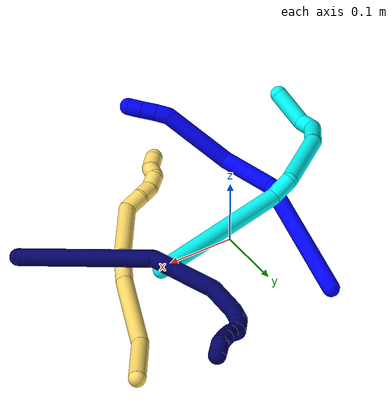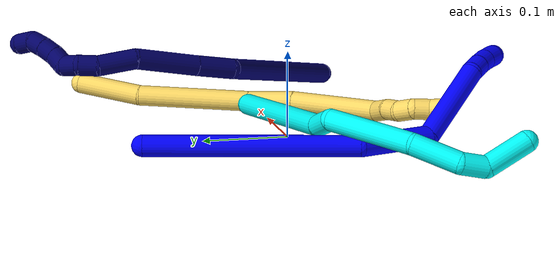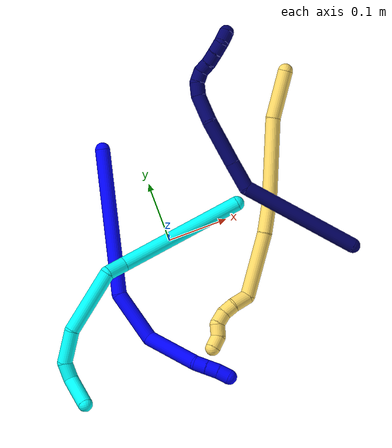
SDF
<sdf version="1.7">
 <world name="default">
  <model name="photoneo_s_sensor">
   <static>1</static>
   <pose>0 0 2 1.57079 1.57079 3.14159</pose>
   <link name="link">
    <inertial><mass>0.1</mass></inertial>
    <sensor name="sensor" type="depth">
     <update_rate>30</update_rate>
     <camera>
      <horizontal_fov>1.22</horizontal_fov>
      <image><width>1920</width><height>1200</height><format>B8G8R8</format></image>
      <clip><near>0.1</near><far>4</far></clip>
      <depth_camera><output>points</output></depth_camera>
     </camera>
     <plugin name="camera_plugin" filename="libgazebo_ros_depth_camera.so">
      <baseline>0.2</baseline>
      <alwaysOn>1</alwaysOn>
      <updateRate>0.0</updateRate>
      <cameraName>camera_ir</cameraName>
      <imageTopicName>/camera/color/image_raw</imageTopicName>
      <cameraInfoTopicName>/camera/color/camera_info</cameraInfoTopicName>
      <depthImageTopicName>/camera/depth/image_raw</depthImageTopicName>
      <depthImageCameraInfoTopicName>/camera/depth/camera_info</depthImageCameraInfoTopicName>
      <pointCloudTopicName>/camera/depth/points</pointCloudTopicName>
      <frameName>fr_optical</frameName>
      <pointCloudCutoff>0.1</pointCloudCutoff>
      <pointCloudCutoffMax>2.0</pointCloudCutoffMax>
      <distortionK1>0</distortionK1>
      <distortionK2>0</distortionK2>
      <distortionK3>0</distortionK3>
      <distortionT1>0</distortionT1>
      <distortionT2>0</distortionT2>
      <CxPrime>0</CxPrime>
      <Cx>0</Cx>
      <Cy>0</Cy>
      <focalLength>0</focalLength>
      <hackBaseline>0</hackBaseline>
     </plugin>
    </sensor>
   </link>
  </model>
  <model name="bin">
   <static>1</static>
   <link name="bottom">
    <collision name="collision-bottom">
     <pose>0 0 -0.01 0 -0 0</pose>
     <geometry><box><size>0.8 0.6 0.02</size></box></geometry>
     <surface>
      <friction><ode><mu>100</mu><mu2>100</mu2></ode></friction>
      <contact><collide_bitmask>65535</collide_bitmask></contact>
     </surface>
    </collision>
   </link>
   <link name="west_wall">
    <collision name="collision-west_wall">
     <pose>-0.41 0 0.1 0 -0 0</pose>
     <geometry><box><size>0.02 0.6 0.2</size></box></geometry>
     <surface>
      <friction><ode><mu>100</mu><mu2>100</mu2></ode></friction>
      <contact><collide_bitmask>65535</collide_bitmask></contact>
     </surface>
    </collision>
   </link>
   <link name="east_wall">
    <collision name="collision-east_wall">
     <pose>0.41 0 0.1 0 -0 0</pose>
     <geometry><box><size>0.02 0.6 0.2</size></box></geometry>
     <surface>
      <friction><ode><mu>100</mu><mu2>100</mu2></ode></friction>
      <contact><collide_bitmask>65535</collide_bitmask></contact>
     </surface>
    </collision>
   </link>
   <link name="south_wall">
    <collision name="collision-south_wall">
     <pose>0 -0.31 0.1 0 -0 0</pose>
     <geometry><box><size>0.8 0.02 0.2</size></box></geometry>
     <surface>
      <friction><ode><mu>100</mu><mu2>100</mu2></ode></friction>
      <contact><collide_bitmask>65535</collide_bitmask></contact>
     </surface>
    </collision>
   </link>
   <link name="north_wall">
    <collision name="collision-north_wall">
     <pose>0 0.31 0.1 0 -0 0</pose>
     <geometry><box><size>0.8 0.02 0.2</size></box></geometry>
     <surface>
      <friction><ode><mu>100</mu><mu2>100</mu2></ode></friction>
      <contact><collide_bitmask>65535</collide_bitmask></contact>
     </surface>
    </collision>
   </link>
  </model>
  <model name="1">
   <static>0</static>
   <link name="1">
    <collision name="collision-cylinder-e_1_1_4">
     <pose>-0.010804 -0.106059 0.059136 1.06215 -0.088735 -0.052142</pose>
     <geometry><cylinder><radius>0.0125</radius><length>0.243822</length></cylinder></geometry>
     <surface>
      <friction><ode><mu>1.16</mu><mu2>1.16</mu2><slip1>0</slip1><slip2>0</slip2></ode></friction>
      <contact><ode><kp>1e+06</kp><kd>1</kd><max_vel>0</max_vel><min_depth>0.001</min_depth></ode></contact>
     </surface>
    </collision>
    <visual name="visual-cylinder-e_1_1_4">
     <pose>-0.010804 -0.106059 0.059136 1.06215 -0.088735 -0.052142</pose>
     <geometry><cylinder><radius>0.0125</radius><length>0.243822</length></cylinder></geometry>
     <material><ambient>0 0 1 1</ambient></material>
    </visual>
    <collision name="collision-cylinder-e_2_4_5">
     <pose>-0.009007 -0.240824 0.149514 0.743119 0.288675 0.113151</pose>
     <geometry><cylinder><radius>0.0125</radius><length>0.088518</length></cylinder></geometry>
     <surface>
      <friction><ode><mu>1.16</mu><mu2>1.16</mu2><slip1>0</slip1><slip2>0</slip2></ode></friction>
      <contact><ode><kp>1e+06</kp><kd>1</kd><max_vel>0</max_vel><min_depth>0.001</min_depth></ode></contact>
     </surface>
    </collision>
    <visual name="visual-cylinder-e_2_4_5">
     <pose>-0.009007 -0.240824 0.149514 0.743119 0.288675 0.113151</pose>
     <geometry><cylinder><radius>0.0125</radius><length>0.088518</length></cylinder></geometry>
     <material><ambient>0 0 1 1</ambient></material>
    </visual>
    <collision name="collision-cylinder-e_3_5_6">
     <pose>0.010606 -0.271583 0.233745 0.038718 0.1315 0.00255</pose>
     <geometry><cylinder><radius>0.0125</radius><length>0.106981</length></cylinder></geometry>
     <surface>
      <friction><ode><mu>1.16</mu><mu2>1.16</mu2><slip1>0</slip1><slip2>0</slip2></ode></friction>
      <contact><ode><kp>1e+06</kp><kd>1</kd><max_vel>0</max_vel><min_depth>0.001</min_depth></ode></contact>
     </surface>
    </collision>
    <visual name="visual-cylinder-e_3_5_6">
     <pose>0.010606 -0.271583 0.233745 0.038718 0.1315 0.00255</pose>
     <geometry><cylinder><radius>0.0125</radius><length>0.106981</length></cylinder></geometry>
     <material><ambient>0 0 1 1</ambient></material>
    </visual>
    <collision name="collision-cylinder-e_4_6_7">
     <pose>0.022781 -0.274605 0.295456 0.110668 0.531647 0.03016</pose>
     <geometry><cylinder><radius>0.0125</radius><length>0.020363</length></cylinder></geometry>
     <surface>
      <friction><ode><mu>1.16</mu><mu2>1.16</mu2><slip1>0</slip1><slip2>0</slip2></ode></friction>
      <contact><ode><kp>1e+06</kp><kd>1</kd><max_vel>0</max_vel><min_depth>0.001</min_depth></ode></contact>
     </surface>
    </collision>
    <visual name="visual-cylinder-e_4_6_7">
     <pose>0.022781 -0.274605 0.295456 0.110668 0.531647 0.03016</pose>
     <geometry><cylinder><radius>0.0125</radius><length>0.020363</length></cylinder></geometry>
     <material><ambient>0 0 1 1</ambient></material>
    </visual>
    <collision name="collision-cylinder-e_5_7_8">
     <pose>0.033707 -0.276838 0.312404 0.15247 0.60582 0.047735</pose>
     <geometry><cylinder><radius>0.0125</radius><length>0.020247</length></cylinder></geometry>
     <surface>
      <friction><ode><mu>1.16</mu><mu2>1.16</mu2><slip1>0</slip1><slip2>0</slip2></ode></friction>
      <contact><ode><kp>1e+06</kp><kd>1</kd><max_vel>0</max_vel><min_depth>0.001</min_depth></ode></contact>
     </surface>
    </collision>
    <visual name="visual-cylinder-e_5_7_8">
     <pose>0.033707 -0.276838 0.312404 0.15247 0.60582 0.047735</pose>
     <geometry><cylinder><radius>0.0125</radius><length>0.020247</length></cylinder></geometry>
     <material><ambient>0 0 1 1</ambient></material>
    </visual>
    <collision name="collision-cylinder-e_6_8_2">
     <pose>0.044937 -0.280638 0.328654 0.306028 0.575875 0.091286</pose>
     <geometry><cylinder><radius>0.0125</radius><length>0.02007</length></cylinder></geometry>
     <surface>
      <friction><ode><mu>1.16</mu><mu2>1.16</mu2><slip1>0</slip1><slip2>0</slip2></ode></friction>
      <contact><ode><kp>1e+06</kp><kd>1</kd><max_vel>0</max_vel><min_depth>0.001</min_depth></ode></contact>
     </surface>
    </collision>
    <visual name="visual-cylinder-e_6_8_2">
     <pose>0.044937 -0.280638 0.328654 0.306028 0.575875 0.091286</pose>
     <geometry><cylinder><radius>0.0125</radius><length>0.02007</length></cylinder></geometry>
     <material><ambient>0 0 1 1</ambient></material>
    </visual>
    <collision name="collision-sphere-2">
     <pose>0.050401 -0.283173 0.33668 0 -0 0</pose>
     <geometry><sphere><radius>0.0125</radius></sphere></geometry>
     <surface>
      <friction><ode><mu>1.16</mu><mu2>1.16</mu2><slip1>0</slip1><slip2>0</slip2></ode></friction>
      <contact><ode><kp>1e+06</kp><kd>1</kd><max_vel>0</max_vel><min_depth>0.001</min_depth></ode></contact>
     </surface>
    </collision>
    <visual name="visual-sphere-2">
     <pose>0.050401 -0.283173 0.33668 0 -0 0</pose>
     <geometry><sphere><radius>0.0125</radius></sphere></geometry>
     <material><ambient>0 0 1 1</ambient></material>
    </visual>
    <collision name="collision-sphere-4">
     <pose>-0.021607 -0.212118 0.118272 0 -0 0</pose>
     <geometry><sphere><radius>0.0125</radius></sphere></geometry>
     <surface>
      <friction><ode><mu>1.16</mu><mu2>1.16</mu2><slip1>0</slip1><slip2>0</slip2></ode></friction>
      <contact><ode><kp>1e+06</kp><kd>1</kd><max_vel>0</max_vel><min_depth>0.001</min_depth></ode></contact>
     </surface>
    </collision>
    <visual name="visual-sphere-4">
     <pose>-0.021607 -0.212118 0.118272 0 -0 0</pose>
     <geometry><sphere><radius>0.0125</radius></sphere></geometry>
     <material><ambient>0 0 1 1</ambient></material>
    </visual>
    <collision name="collision-sphere-1">
     <geometry><sphere><radius>0.0125</radius></sphere></geometry>
     <surface>
      <friction><ode><mu>1.16</mu><mu2>1.16</mu2><slip1>0</slip1><slip2>0</slip2></ode></friction>
      <contact><ode><kp>1e+06</kp><kd>1</kd><max_vel>0</max_vel><min_depth>0.001</min_depth></ode></contact>
     </surface>
    </collision>
    <visual name="visual-sphere-1">
     <geometry><sphere><radius>0.0125</radius></sphere></geometry>
     <material><ambient>0 0 1 1</ambient></material>
    </visual>
    <collision name="collision-sphere-8">
     <pose>0.039472 -0.278102 0.320629 0 -0 0</pose>
     <geometry><sphere><radius>0.0125</radius></sphere></geometry>
     <surface>
      <friction><ode><mu>1.16</mu><mu2>1.16</mu2><slip1>0</slip1><slip2>0</slip2></ode></friction>
      <contact><ode><kp>1e+06</kp><kd>1</kd><max_vel>0</max_vel><min_depth>0.001</min_depth></ode></contact>
     </surface>
    </collision>
    <visual name="visual-sphere-8">
     <pose>0.039472 -0.278102 0.320629 0 -0 0</pose>
     <geometry><sphere><radius>0.0125</radius></sphere></geometry>
     <material><ambient>0 0 1 1</ambient></material>
    </visual>
    <collision name="collision-sphere-5">
     <pose>0.003592 -0.269531 0.180757 0 -0 0</pose>
     <geometry><sphere><radius>0.0125</radius></sphere></geometry>
     <surface>
      <friction><ode><mu>1.16</mu><mu2>1.16</mu2><slip1>0</slip1><slip2>0</slip2></ode></friction>
      <contact><ode><kp>1e+06</kp><kd>1</kd><max_vel>0</max_vel><min_depth>0.001</min_depth></ode></contact>
     </surface>
    </collision>
    <visual name="visual-sphere-5">
     <pose>0.003592 -0.269531 0.180757 0 -0 0</pose>
     <geometry><sphere><radius>0.0125</radius></sphere></geometry>
     <material><ambient>0 0 1 1</ambient></material>
    </visual>
    <collision name="collision-sphere-6">
     <pose>0.01762 -0.273636 0.286734 0 -0 0</pose>
     <geometry><sphere><radius>0.0125</radius></sphere></geometry>
     <surface>
      <friction><ode><mu>1.16</mu><mu2>1.16</mu2><slip1>0</slip1><slip2>0</slip2></ode></friction>
      <contact><ode><kp>1e+06</kp><kd>1</kd><max_vel>0</max_vel><min_depth>0.001</min_depth></ode></contact>
     </surface>
    </collision>
    <visual name="visual-sphere-6">
     <pose>0.01762 -0.273636 0.286734 0 -0 0</pose>
     <geometry><sphere><radius>0.0125</radius></sphere></geometry>
     <material><ambient>0 0 1 1</ambient></material>
    </visual>
    <collision name="collision-sphere-7">
     <pose>0.027943 -0.275574 0.304179 0 -0 0</pose>
     <geometry><sphere><radius>0.0125</radius></sphere></geometry>
     <surface>
      <friction><ode><mu>1.16</mu><mu2>1.16</mu2><slip1>0</slip1><slip2>0</slip2></ode></friction>
      <contact><ode><kp>1e+06</kp><kd>1</kd><max_vel>0</max_vel><min_depth>0.001</min_depth></ode></contact>
     </surface>
    </collision>
    <visual name="visual-sphere-7">
     <pose>0.027943 -0.275574 0.304179 0 -0 0</pose>
     <geometry><sphere><radius>0.0125</radius></sphere></geometry>
     <material><ambient>0 0 1 1</ambient></material>
    </visual>
    <inertial>
     <pose>-0.000497 -0.18612 0.143194 0 -0 0</pose>
     <mass>0.5</mass>
     <inertia>
      <ixx>0.001326</ixx>
      <ixy>0</ixy>
      <ixz>0</ixz>
      <iyy>0.000675</iyy>
      <iyz>0</iyz>
      <izz>0.001204</izz>
     </inertia>
    </inertial>
   </link>
   <pose>-0.052392 0.179454 0.011462 0.576975 0.656206 -0.124344</pose>
  </model>
  <model name="3">
   <static>0</static>
   <link name="3">
    <collision name="collision-cylinder-e_1_1_4">
     <pose>-0.056237 -0.037152 0.083203 0.419963 -0.552947 -0.120796</pose>
     <geometry><cylinder><radius>0.0125</radius><length>0.214155</length></cylinder></geometry>
     <surface>
      <friction><ode><mu>1.16</mu><mu2>1.16</mu2><slip1>0</slip1><slip2>0</slip2></ode></friction>
      <contact><ode><kp>1e+06</kp><kd>1</kd><max_vel>0</max_vel><min_depth>0.001</min_depth></ode></contact>
     </surface>
    </collision>
    <visual name="visual-cylinder-e_1_1_4">
     <pose>-0.056237 -0.037152 0.083203 0.419963 -0.552947 -0.120796</pose>
     <geometry><cylinder><radius>0.0125</radius><length>0.214155</length></cylinder></geometry>
     <material><ambient>0.003922 1 0.996078 1</ambient></material>
    </visual>
    <collision name="collision-cylinder-e_2_4_5">
     <pose>-0.123277 -0.083573 0.176278 0.75385 -0.673382 -0.275357</pose>
     <geometry><cylinder><radius>0.0125</radius><length>0.034646</length></cylinder></geometry>
     <surface>
      <friction><ode><mu>1.16</mu><mu2>1.16</mu2><slip1>0</slip1><slip2>0</slip2></ode></friction>
      <contact><ode><kp>1e+06</kp><kd>1</kd><max_vel>0</max_vel><min_depth>0.001</min_depth></ode></contact>
     </surface>
    </collision>
    <visual name="visual-cylinder-e_2_4_5">
     <pose>-0.123277 -0.083573 0.176278 0.75385 -0.673382 -0.275357</pose>
     <geometry><cylinder><radius>0.0125</radius><length>0.034646</length></cylinder></geometry>
     <material><ambient>0.003922 1 0.996078 1</ambient></material>
    </visual>
    <collision name="collision-cylinder-e_3_5_6">
     <pose>-0.176732 -0.086949 0.221127 -0.166906 -0.877089 0.078421</pose>
     <geometry><cylinder><radius>0.0125</radius><length>0.110948</length></cylinder></geometry>
     <surface>
      <friction><ode><mu>1.16</mu><mu2>1.16</mu2><slip1>0</slip1><slip2>0</slip2></ode></friction>
      <contact><ode><kp>1e+06</kp><kd>1</kd><max_vel>0</max_vel><min_depth>0.001</min_depth></ode></contact>
     </surface>
    </collision>
    <visual name="visual-cylinder-e_3_5_6">
     <pose>-0.176732 -0.086949 0.221127 -0.166906 -0.877089 0.078421</pose>
     <geometry><cylinder><radius>0.0125</radius><length>0.110948</length></cylinder></geometry>
     <material><ambient>0.003922 1 0.996078 1</ambient></material>
    </visual>
    <collision name="collision-cylinder-e_4_6_7">
     <pose>-0.240422 -0.068561 0.269574 -0.747864 -0.852887 0.35284</pose>
     <geometry><cylinder><radius>0.0125</radius><length>0.055862</length></cylinder></geometry>
     <surface>
      <friction><ode><mu>1.16</mu><mu2>1.16</mu2><slip1>0</slip1><slip2>0</slip2></ode></friction>
      <contact><ode><kp>1e+06</kp><kd>1</kd><max_vel>0</max_vel><min_depth>0.001</min_depth></ode></contact>
     </surface>
    </collision>
    <visual name="visual-cylinder-e_4_6_7">
     <pose>-0.240422 -0.068561 0.269574 -0.747864 -0.852887 0.35284</pose>
     <geometry><cylinder><radius>0.0125</radius><length>0.055862</length></cylinder></geometry>
     <material><ambient>0.003922 1 0.996078 1</ambient></material>
    </visual>
    <collision name="collision-cylinder-e_5_7_8">
     <pose>-0.272516 -0.046208 0.282237 -1.65256 -0.840951 0.903614</pose>
     <geometry><cylinder><radius>0.0125</radius><length>0.029669</length></cylinder></geometry>
     <surface>
      <friction><ode><mu>1.16</mu><mu2>1.16</mu2><slip1>0</slip1><slip2>0</slip2></ode></friction>
      <contact><ode><kp>1e+06</kp><kd>1</kd><max_vel>0</max_vel><min_depth>0.001</min_depth></ode></contact>
     </surface>
    </collision>
    <visual name="visual-cylinder-e_5_7_8">
     <pose>-0.272516 -0.046208 0.282237 -1.65256 -0.840951 0.903614</pose>
     <geometry><cylinder><radius>0.0125</radius><length>0.029669</length></cylinder></geometry>
     <material><ambient>0.003922 1 0.996078 1</ambient></material>
    </visual>
    <collision name="collision-cylinder-e_6_8_2">
     <pose>-0.30722 -0.031866 0.268421 -2.80966 -1.04386 2.57477</pose>
     <geometry><cylinder><radius>0.0125</radius><length>0.05472</length></cylinder></geometry>
     <surface>
      <friction><ode><mu>1.16</mu><mu2>1.16</mu2><slip1>0</slip1><slip2>0</slip2></ode></friction>
      <contact><ode><kp>1e+06</kp><kd>1</kd><max_vel>0</max_vel><min_depth>0.001</min_depth></ode></contact>
     </surface>
    </collision>
    <visual name="visual-cylinder-e_6_8_2">
     <pose>-0.30722 -0.031866 0.268421 -2.80966 -1.04386 2.57477</pose>
     <geometry><cylinder><radius>0.0125</radius><length>0.05472</length></cylinder></geometry>
     <material><ambient>0.003922 1 0.996078 1</ambient></material>
    </visual>
    <collision name="collision-sphere-2">
     <pose>-0.330869 -0.027383 0.255413 0 -0 0</pose>
     <geometry><sphere><radius>0.0125</radius></sphere></geometry>
     <surface>
      <friction><ode><mu>1.16</mu><mu2>1.16</mu2><slip1>0</slip1><slip2>0</slip2></ode></friction>
      <contact><ode><kp>1e+06</kp><kd>1</kd><max_vel>0</max_vel><min_depth>0.001</min_depth></ode></contact>
     </surface>
    </collision>
    <visual name="visual-sphere-2">
     <pose>-0.330869 -0.027383 0.255413 0 -0 0</pose>
     <geometry><sphere><radius>0.0125</radius></sphere></geometry>
     <material><ambient>0.003922 1 0.996078 1</ambient></material>
    </visual>
    <collision name="collision-sphere-4">
     <pose>-0.112474 -0.074305 0.166406 0 -0 0</pose>
     <geometry><sphere><radius>0.0125</radius></sphere></geometry>
     <surface>
      <friction><ode><mu>1.16</mu><mu2>1.16</mu2><slip1>0</slip1><slip2>0</slip2></ode></friction>
      <contact><ode><kp>1e+06</kp><kd>1</kd><max_vel>0</max_vel><min_depth>0.001</min_depth></ode></contact>
     </surface>
    </collision>
    <visual name="visual-sphere-4">
     <pose>-0.112474 -0.074305 0.166406 0 -0 0</pose>
     <geometry><sphere><radius>0.0125</radius></sphere></geometry>
     <material><ambient>0.003922 1 0.996078 1</ambient></material>
    </visual>
    <collision name="collision-sphere-1">
     <geometry><sphere><radius>0.0125</radius></sphere></geometry>
     <surface>
      <friction><ode><mu>1.16</mu><mu2>1.16</mu2><slip1>0</slip1><slip2>0</slip2></ode></friction>
      <contact><ode><kp>1e+06</kp><kd>1</kd><max_vel>0</max_vel><min_depth>0.001</min_depth></ode></contact>
     </surface>
    </collision>
    <visual name="visual-sphere-1">
     <geometry><sphere><radius>0.0125</radius></sphere></geometry>
     <material><ambient>0.003922 1 0.996078 1</ambient></material>
    </visual>
    <collision name="collision-sphere-8">
     <pose>-0.283571 -0.03635 0.281429 0 -0 0</pose>
     <geometry><sphere><radius>0.0125</radius></sphere></geometry>
     <surface>
      <friction><ode><mu>1.16</mu><mu2>1.16</mu2><slip1>0</slip1><slip2>0</slip2></ode></friction>
      <contact><ode><kp>1e+06</kp><kd>1</kd><max_vel>0</max_vel><min_depth>0.001</min_depth></ode></contact>
     </surface>
    </collision>
    <visual name="visual-sphere-8">
     <pose>-0.283571 -0.03635 0.281429 0 -0 0</pose>
     <geometry><sphere><radius>0.0125</radius></sphere></geometry>
     <material><ambient>0.003922 1 0.996078 1</ambient></material>
    </visual>
    <collision name="collision-sphere-5">
     <pose>-0.13408 -0.092842 0.186151 0 -0 0</pose>
     <geometry><sphere><radius>0.0125</radius></sphere></geometry>
     <surface>
      <friction><ode><mu>1.16</mu><mu2>1.16</mu2><slip1>0</slip1><slip2>0</slip2></ode></friction>
      <contact><ode><kp>1e+06</kp><kd>1</kd><max_vel>0</max_vel><min_depth>0.001</min_depth></ode></contact>
     </surface>
    </collision>
    <visual name="visual-sphere-5">
     <pose>-0.13408 -0.092842 0.186151 0 -0 0</pose>
     <geometry><sphere><radius>0.0125</radius></sphere></geometry>
     <material><ambient>0.003922 1 0.996078 1</ambient></material>
    </visual>
    <collision name="collision-sphere-6">
     <pose>-0.219385 -0.081057 0.256104 0 -0 0</pose>
     <geometry><sphere><radius>0.0125</radius></sphere></geometry>
     <surface>
      <friction><ode><mu>1.16</mu><mu2>1.16</mu2><slip1>0</slip1><slip2>0</slip2></ode></friction>
      <contact><ode><kp>1e+06</kp><kd>1</kd><max_vel>0</max_vel><min_depth>0.001</min_depth></ode></contact>
     </surface>
    </collision>
    <visual name="visual-sphere-6">
     <pose>-0.219385 -0.081057 0.256104 0 -0 0</pose>
     <geometry><sphere><radius>0.0125</radius></sphere></geometry>
     <material><ambient>0.003922 1 0.996078 1</ambient></material>
    </visual>
    <collision name="collision-sphere-7">
     <pose>-0.26146 -0.056066 0.283045 0 -0 0</pose>
     <geometry><sphere><radius>0.0125</radius></sphere></geometry>
     <surface>
      <friction><ode><mu>1.16</mu><mu2>1.16</mu2><slip1>0</slip1><slip2>0</slip2></ode></friction>
      <contact><ode><kp>1e+06</kp><kd>1</kd><max_vel>0</max_vel><min_depth>0.001</min_depth></ode></contact>
     </surface>
    </collision>
    <visual name="visual-sphere-7">
     <pose>-0.26146 -0.056066 0.283045 0 -0 0</pose>
     <geometry><sphere><radius>0.0125</radius></sphere></geometry>
     <material><ambient>0.003922 1 0.996078 1</ambient></material>
    </visual>
    <inertial>
     <pose>-0.148499 -0.054887 0.17316 0 -0 0</pose>
     <mass>0.5</mass>
     <inertia>
      <ixx>0.000686</ixx>
      <ixy>0</ixy>
      <ixz>0</ixz>
      <iyy>0.000851</iyy>
      <iyz>0</iyz>
      <izz>0.000841</izz>
     </inertia>
    </inertial>
   </link>
   <pose>0.126271 0.017504 0.011819 -2.13149 0.396029 1.16094</pose>
  </model>
  <model name="5">
   <static>0</static>
   <link name="5">
    <collision name="collision-cylinder-e_1_1_4">
     <pose>-0.024747 -0.022208 -0.023945 2.3938 -0.648447 -1.41661</pose>
     <geometry><cylinder><radius>0.0125</radius><length>0.081951</length></cylinder></geometry>
     <surface>
      <friction><ode><mu>1.16</mu><mu2>1.16</mu2><slip1>0</slip1><slip2>0</slip2></ode></friction>
      <contact><ode><kp>1e+06</kp><kd>1</kd><max_vel>0</max_vel><min_depth>0.001</min_depth></ode></contact>
     </surface>
    </collision>
    <visual name="visual-cylinder-e_1_1_4">
     <pose>-0.024747 -0.022208 -0.023945 2.3938 -0.648447 -1.41661</pose>
     <geometry><cylinder><radius>0.0125</radius><length>0.081951</length></cylinder></geometry>
     <material><ambient>1 0.858824 0.4 1</ambient></material>
    </visual>
    <collision name="collision-cylinder-e_2_4_5">
     <pose>-0.07922 -0.092368 -0.087206 2.25757 -0.447016 -0.895554</pose>
     <geometry><cylinder><radius>0.0125</radius><length>0.137531</length></cylinder></geometry>
     <surface>
      <friction><ode><mu>1.16</mu><mu2>1.16</mu2><slip1>0</slip1><slip2>0</slip2></ode></friction>
      <contact><ode><kp>1e+06</kp><kd>1</kd><max_vel>0</max_vel><min_depth>0.001</min_depth></ode></contact>
     </surface>
    </collision>
    <visual name="visual-cylinder-e_2_4_5">
     <pose>-0.07922 -0.092368 -0.087206 2.25757 -0.447016 -0.895554</pose>
     <geometry><cylinder><radius>0.0125</radius><length>0.137531</length></cylinder></geometry>
     <material><ambient>1 0.858824 0.4 1</ambient></material>
    </visual>
    <collision name="collision-cylinder-e_3_5_6">
     <pose>-0.123955 -0.160152 -0.140286 2.17746 -0.556258 -0.999065</pose>
     <geometry><cylinder><radius>0.0125</radius><length>0.056852</length></cylinder></geometry>
     <surface>
      <friction><ode><mu>1.16</mu><mu2>1.16</mu2><slip1>0</slip1><slip2>0</slip2></ode></friction>
      <contact><ode><kp>1e+06</kp><kd>1</kd><max_vel>0</max_vel><min_depth>0.001</min_depth></ode></contact>
     </surface>
    </collision>
    <visual name="visual-cylinder-e_3_5_6">
     <pose>-0.123955 -0.160152 -0.140286 2.17746 -0.556258 -0.999065</pose>
     <geometry><cylinder><radius>0.0125</radius><length>0.056852</length></cylinder></geometry>
     <material><ambient>1 0.858824 0.4 1</ambient></material>
    </visual>
    <collision name="collision-cylinder-e_4_6_7">
     <pose>-0.172571 -0.212165 -0.182157 2.28874 -0.666477 -1.30219</pose>
     <geometry><cylinder><radius>0.0125</radius><length>0.108721</length></cylinder></geometry>
     <surface>
      <friction><ode><mu>1.16</mu><mu2>1.16</mu2><slip1>0</slip1><slip2>0</slip2></ode></friction>
      <contact><ode><kp>1e+06</kp><kd>1</kd><max_vel>0</max_vel><min_depth>0.001</min_depth></ode></contact>
     </surface>
    </collision>
    <visual name="visual-cylinder-e_4_6_7">
     <pose>-0.172571 -0.212165 -0.182157 2.28874 -0.666477 -1.30219</pose>
     <geometry><cylinder><radius>0.0125</radius><length>0.108721</length></cylinder></geometry>
     <material><ambient>1 0.858824 0.4 1</ambient></material>
    </visual>
    <collision name="collision-cylinder-e_5_7_8">
     <pose>-0.220251 -0.248165 -0.209112 1.27783 -1.29459 -1.02335</pose>
     <geometry><cylinder><radius>0.0125</radius><length>0.029256</length></cylinder></geometry>
     <surface>
      <friction><ode><mu>1.16</mu><mu2>1.16</mu2><slip1>0</slip1><slip2>0</slip2></ode></friction>
      <contact><ode><kp>1e+06</kp><kd>1</kd><max_vel>0</max_vel><min_depth>0.001</min_depth></ode></contact>
     </surface>
    </collision>
    <visual name="visual-cylinder-e_5_7_8">
     <pose>-0.220251 -0.248165 -0.209112 1.27783 -1.29459 -1.02335</pose>
     <geometry><cylinder><radius>0.0125</radius><length>0.029256</length></cylinder></geometry>
     <material><ambient>1 0.858824 0.4 1</ambient></material>
    </visual>
    <collision name="collision-cylinder-e_6_8_9">
     <pose>-0.244374 -0.254778 -0.20952 2.07993 -1.26254 -1.78848</pose>
     <geometry><cylinder><radius>0.0125</radius><length>0.021093</length></cylinder></geometry>
     <surface>
      <friction><ode><mu>1.16</mu><mu2>1.16</mu2><slip1>0</slip1><slip2>0</slip2></ode></friction>
      <contact><ode><kp>1e+06</kp><kd>1</kd><max_vel>0</max_vel><min_depth>0.001</min_depth></ode></contact>
     </surface>
    </collision>
    <visual name="visual-cylinder-e_6_8_9">
     <pose>-0.244374 -0.254778 -0.20952 2.07993 -1.26254 -1.78848</pose>
     <geometry><cylinder><radius>0.0125</radius><length>0.021093</length></cylinder></geometry>
     <material><ambient>1 0.858824 0.4 1</ambient></material>
    </visual>
    <collision name="collision-cylinder-e_7_9_10">
     <pose>-0.263174 -0.26406 -0.213005 1.85937 -0.912512 -1.16348</pose>
     <geometry><cylinder><radius>0.0125</radius><length>0.022124</length></cylinder></geometry>
     <surface>
      <friction><ode><mu>1.16</mu><mu2>1.16</mu2><slip1>0</slip1><slip2>0</slip2></ode></friction>
      <contact><ode><kp>1e+06</kp><kd>1</kd><max_vel>0</max_vel><min_depth>0.001</min_depth></ode></contact>
     </surface>
    </collision>
    <visual name="visual-cylinder-e_7_9_10">
     <pose>-0.263174 -0.26406 -0.213005 1.85937 -0.912512 -1.16348</pose>
     <geometry><cylinder><radius>0.0125</radius><length>0.022124</length></cylinder></geometry>
     <material><ambient>1 0.858824 0.4 1</ambient></material>
    </visual>
    <collision name="collision-cylinder-e_8_10_11">
     <pose>-0.275133 -0.278158 -0.221184 2.25854 -0.314871 -0.648067</pose>
     <geometry><cylinder><radius>0.0125</radius><length>0.020719</length></cylinder></geometry>
     <surface>
      <friction><ode><mu>1.16</mu><mu2>1.16</mu2><slip1>0</slip1><slip2>0</slip2></ode></friction>
      <contact><ode><kp>1e+06</kp><kd>1</kd><max_vel>0</max_vel><min_depth>0.001</min_depth></ode></contact>
     </surface>
    </collision>
    <visual name="visual-cylinder-e_8_10_11">
     <pose>-0.275133 -0.278158 -0.221184 2.25854 -0.314871 -0.648067</pose>
     <geometry><cylinder><radius>0.0125</radius><length>0.020719</length></cylinder></geometry>
     <material><ambient>1 0.858824 0.4 1</ambient></material>
    </visual>
    <collision name="collision-cylinder-e_9_11_2">
     <pose>-0.286482 -0.292276 -0.23055 2.01711 -0.845746 -1.24043</pose>
     <geometry><cylinder><radius>0.0125</radius><length>0.021753</length></cylinder></geometry>
     <surface>
      <friction><ode><mu>1.16</mu><mu2>1.16</mu2><slip1>0</slip1><slip2>0</slip2></ode></friction>
      <contact><ode><kp>1e+06</kp><kd>1</kd><max_vel>0</max_vel><min_depth>0.001</min_depth></ode></contact>
     </surface>
    </collision>
    <visual name="visual-cylinder-e_9_11_2">
     <pose>-0.286482 -0.292276 -0.23055 2.01711 -0.845746 -1.24043</pose>
     <geometry><cylinder><radius>0.0125</radius><length>0.021753</length></cylinder></geometry>
     <material><ambient>1 0.858824 0.4 1</ambient></material>
    </visual>
    <collision name="collision-sphere-2">
     <pose>-0.294623 -0.298782 -0.233664 0 -0 0</pose>
     <geometry><sphere><radius>0.0125</radius></sphere></geometry>
     <surface>
      <friction><ode><mu>1.16</mu><mu2>1.16</mu2><slip1>0</slip1><slip2>0</slip2></ode></friction>
      <contact><ode><kp>1e+06</kp><kd>1</kd><max_vel>0</max_vel><min_depth>0.001</min_depth></ode></contact>
     </surface>
    </collision>
    <visual name="visual-sphere-2">
     <pose>-0.294623 -0.298782 -0.233664 0 -0 0</pose>
     <geometry><sphere><radius>0.0125</radius></sphere></geometry>
     <material><ambient>1 0.858824 0.4 1</ambient></material>
    </visual>
    <collision name="collision-sphere-11">
     <pose>-0.278341 -0.285769 -0.227437 0 -0 0</pose>
     <geometry><sphere><radius>0.0125</radius></sphere></geometry>
     <surface>
      <friction><ode><mu>1.16</mu><mu2>1.16</mu2><slip1>0</slip1><slip2>0</slip2></ode></friction>
      <contact><ode><kp>1e+06</kp><kd>1</kd><max_vel>0</max_vel><min_depth>0.001</min_depth></ode></contact>
     </surface>
    </collision>
    <visual name="visual-sphere-11">
     <pose>-0.278341 -0.285769 -0.227437 0 -0 0</pose>
     <geometry><sphere><radius>0.0125</radius></sphere></geometry>
     <material><ambient>1 0.858824 0.4 1</ambient></material>
    </visual>
    <collision name="collision-sphere-10">
     <pose>-0.271925 -0.270547 -0.214931 0 -0 0</pose>
     <geometry><sphere><radius>0.0125</radius></sphere></geometry>
     <surface>
      <friction><ode><mu>1.16</mu><mu2>1.16</mu2><slip1>0</slip1><slip2>0</slip2></ode></friction>
      <contact><ode><kp>1e+06</kp><kd>1</kd><max_vel>0</max_vel><min_depth>0.001</min_depth></ode></contact>
     </surface>
    </collision>
    <visual name="visual-sphere-10">
     <pose>-0.271925 -0.270547 -0.214931 0 -0 0</pose>
     <geometry><sphere><radius>0.0125</radius></sphere></geometry>
     <material><ambient>1 0.858824 0.4 1</ambient></material>
    </visual>
    <collision name="collision-sphere-9">
     <pose>-0.254424 -0.257572 -0.21108 0 -0 0</pose>
     <geometry><sphere><radius>0.0125</radius></sphere></geometry>
     <surface>
      <friction><ode><mu>1.16</mu><mu2>1.16</mu2><slip1>0</slip1><slip2>0</slip2></ode></friction>
      <contact><ode><kp>1e+06</kp><kd>1</kd><max_vel>0</max_vel><min_depth>0.001</min_depth></ode></contact>
     </surface>
    </collision>
    <visual name="visual-sphere-9">
     <pose>-0.254424 -0.257572 -0.21108 0 -0 0</pose>
     <geometry><sphere><radius>0.0125</radius></sphere></geometry>
     <material><ambient>1 0.858824 0.4 1</ambient></material>
    </visual>
    <collision name="collision-sphere-4">
     <pose>-0.049494 -0.044417 -0.04789 0 -0 0</pose>
     <geometry><sphere><radius>0.0125</radius></sphere></geometry>
     <surface>
      <friction><ode><mu>1.16</mu><mu2>1.16</mu2><slip1>0</slip1><slip2>0</slip2></ode></friction>
      <contact><ode><kp>1e+06</kp><kd>1</kd><max_vel>0</max_vel><min_depth>0.001</min_depth></ode></contact>
     </surface>
    </collision>
    <visual name="visual-sphere-4">
     <pose>-0.049494 -0.044417 -0.04789 0 -0 0</pose>
     <geometry><sphere><radius>0.0125</radius></sphere></geometry>
     <material><ambient>1 0.858824 0.4 1</ambient></material>
    </visual>
    <collision name="collision-sphere-1">
     <geometry><sphere><radius>0.0125</radius></sphere></geometry>
     <surface>
      <friction><ode><mu>1.16</mu><mu2>1.16</mu2><slip1>0</slip1><slip2>0</slip2></ode></friction>
      <contact><ode><kp>1e+06</kp><kd>1</kd><max_vel>0</max_vel><min_depth>0.001</min_depth></ode></contact>
     </surface>
    </collision>
    <visual name="visual-sphere-1">
     <geometry><sphere><radius>0.0125</radius></sphere></geometry>
     <material><ambient>1 0.858824 0.4 1</ambient></material>
    </visual>
    <collision name="collision-sphere-8">
     <pose>-0.234325 -0.251984 -0.20796 0 -0 0</pose>
     <geometry><sphere><radius>0.0125</radius></sphere></geometry>
     <surface>
      <friction><ode><mu>1.16</mu><mu2>1.16</mu2><slip1>0</slip1><slip2>0</slip2></ode></friction>
      <contact><ode><kp>1e+06</kp><kd>1</kd><max_vel>0</max_vel><min_depth>0.001</min_depth></ode></contact>
     </surface>
    </collision>
    <visual name="visual-sphere-8">
     <pose>-0.234325 -0.251984 -0.20796 0 -0 0</pose>
     <geometry><sphere><radius>0.0125</radius></sphere></geometry>
     <material><ambient>1 0.858824 0.4 1</ambient></material>
    </visual>
    <collision name="collision-sphere-5">
     <pose>-0.108946 -0.140319 -0.126523 0 -0 0</pose>
     <geometry><sphere><radius>0.0125</radius></sphere></geometry>
     <surface>
      <friction><ode><mu>1.16</mu><mu2>1.16</mu2><slip1>0</slip1><slip2>0</slip2></ode></friction>
      <contact><ode><kp>1e+06</kp><kd>1</kd><max_vel>0</max_vel><min_depth>0.001</min_depth></ode></contact>
     </surface>
    </collision>
    <visual name="visual-sphere-5">
     <pose>-0.108946 -0.140319 -0.126523 0 -0 0</pose>
     <geometry><sphere><radius>0.0125</radius></sphere></geometry>
     <material><ambient>1 0.858824 0.4 1</ambient></material>
    </visual>
    <collision name="collision-sphere-6">
     <pose>-0.138964 -0.179985 -0.154049 0 -0 0</pose>
     <geometry><sphere><radius>0.0125</radius></sphere></geometry>
     <surface>
      <friction><ode><mu>1.16</mu><mu2>1.16</mu2><slip1>0</slip1><slip2>0</slip2></ode></friction>
      <contact><ode><kp>1e+06</kp><kd>1</kd><max_vel>0</max_vel><min_depth>0.001</min_depth></ode></contact>
     </surface>
    </collision>
    <visual name="visual-sphere-6">
     <pose>-0.138964 -0.179985 -0.154049 0 -0 0</pose>
     <geometry><sphere><radius>0.0125</radius></sphere></geometry>
     <material><ambient>1 0.858824 0.4 1</ambient></material>
    </visual>
    <collision name="collision-sphere-7">
     <pose>-0.206178 -0.244346 -0.210264 0 -0 0</pose>
     <geometry><sphere><radius>0.0125</radius></sphere></geometry>
     <surface>
      <friction><ode><mu>1.16</mu><mu2>1.16</mu2><slip1>0</slip1><slip2>0</slip2></ode></friction>
      <contact><ode><kp>1e+06</kp><kd>1</kd><max_vel>0</max_vel><min_depth>0.001</min_depth></ode></contact>
     </surface>
    </collision>
    <visual name="visual-sphere-7">
     <pose>-0.206178 -0.244346 -0.210264 0 -0 0</pose>
     <geometry><sphere><radius>0.0125</radius></sphere></geometry>
     <material><ambient>1 0.858824 0.4 1</ambient></material>
    </visual>
    <inertial>
     <pose>-0.136171 -0.154585 -0.133166 0 -0 0</pose>
     <mass>0.5</mass>
     <inertia>
      <ixx>-0.000154</ixx>
      <ixy>0</ixy>
      <ixz>0</ixz>
      <iyy>-0.000298</iyy>
      <iyz>0</iyz>
      <izz>0.000457</izz>
     </inertia>
    </inertial>
   </link>
   <pose>0.279786 0.198237 0.015061 -0.642929 0.050784 0.050884</pose>
  </model>
  <model name="7">
   <static>0</static>
   <link name="7">
    <collision name="collision-cylinder-e_1_1_4">
     <pose>0.018926 -0.01337 0.099216 0.13395 0.186843 0.012569</pose>
     <geometry><cylinder><radius>0.0125</radius><length>0.203771</length></cylinder></geometry>
     <surface>
      <friction><ode><mu>1.16</mu><mu2>1.16</mu2><slip1>0</slip1><slip2>0</slip2></ode></friction>
      <contact><ode><kp>1e+06</kp><kd>1</kd><max_vel>0</max_vel><min_depth>0.001</min_depth></ode></contact>
     </surface>
    </collision>
    <visual name="visual-cylinder-e_1_1_4">
     <pose>0.018926 -0.01337 0.099216 0.13395 0.186843 0.012569</pose>
     <geometry><cylinder><radius>0.0125</radius><length>0.203771</length></cylinder></geometry>
     <material><ambient>0.003922 0 0.403922 1</ambient></material>
    </visual>
    <collision name="collision-cylinder-e_2_4_5">
     <pose>0.053721 -0.030736 0.215303 0.232578 0.741175 0.090713</pose>
     <geometry><cylinder><radius>0.0125</radius><length>0.04701</length></cylinder></geometry>
     <surface>
      <friction><ode><mu>1.16</mu><mu2>1.16</mu2><slip1>0</slip1><slip2>0</slip2></ode></friction>
      <contact><ode><kp>1e+06</kp><kd>1</kd><max_vel>0</max_vel><min_depth>0.001</min_depth></ode></contact>
     </surface>
    </collision>
    <visual name="visual-cylinder-e_2_4_5">
     <pose>0.053721 -0.030736 0.215303 0.232578 0.741175 0.090713</pose>
     <geometry><cylinder><radius>0.0125</radius><length>0.04701</length></cylinder></geometry>
     <material><ambient>0.003922 0 0.403922 1</ambient></material>
    </visual>
    <collision name="collision-cylinder-e_3_5_6">
     <pose>0.096153 -0.042153 0.259791 0.262488 0.74855 0.103606</pose>
     <geometry><cylinder><radius>0.0125</radius><length>0.078057</length></cylinder></geometry>
     <surface>
      <friction><ode><mu>1.16</mu><mu2>1.16</mu2><slip1>0</slip1><slip2>0</slip2></ode></friction>
      <contact><ode><kp>1e+06</kp><kd>1</kd><max_vel>0</max_vel><min_depth>0.001</min_depth></ode></contact>
     </surface>
    </collision>
    <visual name="visual-cylinder-e_3_5_6">
     <pose>0.096153 -0.042153 0.259791 0.262488 0.74855 0.103606</pose>
     <geometry><cylinder><radius>0.0125</radius><length>0.078057</length></cylinder></geometry>
     <material><ambient>0.003922 0 0.403922 1</ambient></material>
    </visual>
    <collision name="collision-cylinder-e_4_6_7">
     <pose>0.141259 -0.047083 0.301658 -0.172993 0.908309 -0.084614</pose>
     <geometry><cylinder><radius>0.0125</radius><length>0.047039</length></cylinder></geometry>
     <surface>
      <friction><ode><mu>1.16</mu><mu2>1.16</mu2><slip1>0</slip1><slip2>0</slip2></ode></friction>
      <contact><ode><kp>1e+06</kp><kd>1</kd><max_vel>0</max_vel><min_depth>0.001</min_depth></ode></contact>
     </surface>
    </collision>
    <visual name="visual-cylinder-e_4_6_7">
     <pose>0.141259 -0.047083 0.301658 -0.172993 0.908309 -0.084614</pose>
     <geometry><cylinder><radius>0.0125</radius><length>0.047039</length></cylinder></geometry>
     <material><ambient>0.003922 0 0.403922 1</ambient></material>
    </visual>
    <collision name="collision-cylinder-e_5_7_8">
     <pose>0.170272 -0.045651 0.32021 0.24115 1.17046 0.160237</pose>
     <geometry><cylinder><radius>0.0125</radius><length>0.022734</length></cylinder></geometry>
     <surface>
      <friction><ode><mu>1.16</mu><mu2>1.16</mu2><slip1>0</slip1><slip2>0</slip2></ode></friction>
      <contact><ode><kp>1e+06</kp><kd>1</kd><max_vel>0</max_vel><min_depth>0.001</min_depth></ode></contact>
     </surface>
    </collision>
    <visual name="visual-cylinder-e_5_7_8">
     <pose>0.170272 -0.045651 0.32021 0.24115 1.17046 0.160237</pose>
     <geometry><cylinder><radius>0.0125</radius><length>0.022734</length></cylinder></geometry>
     <material><ambient>0.003922 0 0.403922 1</ambient></material>
    </visual>
    <collision name="collision-cylinder-e_6_8_9">
     <pose>0.190891 -0.046546 0.323818 -2.91114 1.50068 -2.89455</pose>
     <geometry><cylinder><radius>0.0125</radius><length>0.020352</length></cylinder></geometry>
     <surface>
      <friction><ode><mu>1.16</mu><mu2>1.16</mu2><slip1>0</slip1><slip2>0</slip2></ode></friction>
      <contact><ode><kp>1e+06</kp><kd>1</kd><max_vel>0</max_vel><min_depth>0.001</min_depth></ode></contact>
     </surface>
    </collision>
    <visual name="visual-cylinder-e_6_8_9">
     <pose>0.190891 -0.046546 0.323818 -2.91114 1.50068 -2.89455</pose>
     <geometry><cylinder><radius>0.0125</radius><length>0.020352</length></cylinder></geometry>
     <material><ambient>0.003922 0 0.403922 1</ambient></material>
    </visual>
    <collision name="collision-cylinder-e_7_9_10">
     <pose>0.208565 -0.052202 0.319029 2.18401 0.813198 1.38499</pose>
     <geometry><cylinder><radius>0.0125</radius><length>0.02071</length></cylinder></geometry>
     <surface>
      <friction><ode><mu>1.16</mu><mu2>1.16</mu2><slip1>0</slip1><slip2>0</slip2></ode></friction>
      <contact><ode><kp>1e+06</kp><kd>1</kd><max_vel>0</max_vel><min_depth>0.001</min_depth></ode></contact>
     </surface>
    </collision>
    <visual name="visual-cylinder-e_7_9_10">
     <pose>0.208565 -0.052202 0.319029 2.18401 0.813198 1.38499</pose>
     <geometry><cylinder><radius>0.0125</radius><length>0.02071</length></cylinder></geometry>
     <material><ambient>0.003922 0 0.403922 1</ambient></material>
    </visual>
    <collision name="collision-cylinder-e_8_10_11">
     <pose>0.224565 -0.062806 0.312343 2.0671 1.00018 1.48456</pose>
     <geometry><cylinder><radius>0.0125</radius><length>0.020145</length></cylinder></geometry>
     <surface>
      <friction><ode><mu>1.16</mu><mu2>1.16</mu2><slip1>0</slip1><slip2>0</slip2></ode></friction>
      <contact><ode><kp>1e+06</kp><kd>1</kd><max_vel>0</max_vel><min_depth>0.001</min_depth></ode></contact>
     </surface>
    </collision>
    <visual name="visual-cylinder-e_8_10_11">
     <pose>0.224565 -0.062806 0.312343 2.0671 1.00018 1.48456</pose>
     <geometry><cylinder><radius>0.0125</radius><length>0.020145</length></cylinder></geometry>
     <material><ambient>0.003922 0 0.403922 1</ambient></material>
    </visual>
    <collision name="collision-cylinder-e_9_11_12">
     <pose>0.241953 -0.071463 0.307355 2.12492 1.09832 1.66443</pose>
     <geometry><cylinder><radius>0.0125</radius><length>0.020016</length></cylinder></geometry>
     <surface>
      <friction><ode><mu>1.16</mu><mu2>1.16</mu2><slip1>0</slip1><slip2>0</slip2></ode></friction>
      <contact><ode><kp>1e+06</kp><kd>1</kd><max_vel>0</max_vel><min_depth>0.001</min_depth></ode></contact>
     </surface>
    </collision>
    <visual name="visual-cylinder-e_9_11_12">
     <pose>0.241953 -0.071463 0.307355 2.12492 1.09832 1.66443</pose>
     <geometry><cylinder><radius>0.0125</radius><length>0.020016</length></cylinder></geometry>
     <material><ambient>0.003922 0 0.403922 1</ambient></material>
    </visual>
    <collision name="collision-cylinder-e_10_12_2">
     <pose>0.260668 -0.073791 0.303181 -2.42614 1.33505 -2.25594</pose>
     <geometry><cylinder><radius>0.0125</radius><length>0.020165</length></cylinder></geometry>
     <surface>
      <friction><ode><mu>1.16</mu><mu2>1.16</mu2><slip1>0</slip1><slip2>0</slip2></ode></friction>
      <contact><ode><kp>1e+06</kp><kd>1</kd><max_vel>0</max_vel><min_depth>0.001</min_depth></ode></contact>
     </surface>
    </collision>
    <visual name="visual-cylinder-e_10_12_2">
     <pose>0.260668 -0.073791 0.303181 -2.42614 1.33505 -2.25594</pose>
     <geometry><cylinder><radius>0.0125</radius><length>0.020165</length></cylinder></geometry>
     <material><ambient>0.003922 0 0.403922 1</ambient></material>
    </visual>
    <collision name="collision-sphere-2">
     <pose>0.270472 -0.072247 0.301404 0 -0 0</pose>
     <geometry><sphere><radius>0.0125</radius></sphere></geometry>
     <surface>
      <friction><ode><mu>1.16</mu><mu2>1.16</mu2><slip1>0</slip1><slip2>0</slip2></ode></friction>
      <contact><ode><kp>1e+06</kp><kd>1</kd><max_vel>0</max_vel><min_depth>0.001</min_depth></ode></contact>
     </surface>
    </collision>
    <visual name="visual-sphere-2">
     <pose>0.270472 -0.072247 0.301404 0 -0 0</pose>
     <geometry><sphere><radius>0.0125</radius></sphere></geometry>
     <material><ambient>0.003922 0 0.403922 1</ambient></material>
    </visual>
    <collision name="collision-sphere-12">
     <pose>0.250864 -0.075336 0.304959 0 -0 0</pose>
     <geometry><sphere><radius>0.0125</radius></sphere></geometry>
     <surface>
      <friction><ode><mu>1.16</mu><mu2>1.16</mu2><slip1>0</slip1><slip2>0</slip2></ode></friction>
      <contact><ode><kp>1e+06</kp><kd>1</kd><max_vel>0</max_vel><min_depth>0.001</min_depth></ode></contact>
     </surface>
    </collision>
    <visual name="visual-sphere-12">
     <pose>0.250864 -0.075336 0.304959 0 -0 0</pose>
     <geometry><sphere><radius>0.0125</radius></sphere></geometry>
     <material><ambient>0.003922 0 0.403922 1</ambient></material>
    </visual>
    <collision name="collision-sphere-11">
     <pose>0.233041 -0.06759 0.309752 0 -0 0</pose>
     <geometry><sphere><radius>0.0125</radius></sphere></geometry>
     <surface>
      <friction><ode><mu>1.16</mu><mu2>1.16</mu2><slip1>0</slip1><slip2>0</slip2></ode></friction>
      <contact><ode><kp>1e+06</kp><kd>1</kd><max_vel>0</max_vel><min_depth>0.001</min_depth></ode></contact>
     </surface>
    </collision>
    <visual name="visual-sphere-11">
     <pose>0.233041 -0.06759 0.309752 0 -0 0</pose>
     <geometry><sphere><radius>0.0125</radius></sphere></geometry>
     <material><ambient>0.003922 0 0.403922 1</ambient></material>
    </visual>
    <collision name="collision-sphere-10">
     <pose>0.216088 -0.058022 0.314933 0 -0 0</pose>
     <geometry><sphere><radius>0.0125</radius></sphere></geometry>
     <surface>
      <friction><ode><mu>1.16</mu><mu2>1.16</mu2><slip1>0</slip1><slip2>0</slip2></ode></friction>
      <contact><ode><kp>1e+06</kp><kd>1</kd><max_vel>0</max_vel><min_depth>0.001</min_depth></ode></contact>
     </surface>
    </collision>
    <visual name="visual-sphere-10">
     <pose>0.216088 -0.058022 0.314933 0 -0 0</pose>
     <geometry><sphere><radius>0.0125</radius></sphere></geometry>
     <material><ambient>0.003922 0 0.403922 1</ambient></material>
    </visual>
    <collision name="collision-sphere-9">
     <pose>0.201042 -0.046383 0.323124 0 -0 0</pose>
     <geometry><sphere><radius>0.0125</radius></sphere></geometry>
     <surface>
      <friction><ode><mu>1.16</mu><mu2>1.16</mu2><slip1>0</slip1><slip2>0</slip2></ode></friction>
      <contact><ode><kp>1e+06</kp><kd>1</kd><max_vel>0</max_vel><min_depth>0.001</min_depth></ode></contact>
     </surface>
    </collision>
    <visual name="visual-sphere-9">
     <pose>0.201042 -0.046383 0.323124 0 -0 0</pose>
     <geometry><sphere><radius>0.0125</radius></sphere></geometry>
     <material><ambient>0.003922 0 0.403922 1</ambient></material>
    </visual>
    <collision name="collision-sphere-4">
     <pose>0.037852 -0.02674 0.198431 0 -0 0</pose>
     <geometry><sphere><radius>0.0125</radius></sphere></geometry>
     <surface>
      <friction><ode><mu>1.16</mu><mu2>1.16</mu2><slip1>0</slip1><slip2>0</slip2></ode></friction>
      <contact><ode><kp>1e+06</kp><kd>1</kd><max_vel>0</max_vel><min_depth>0.001</min_depth></ode></contact>
     </surface>
    </collision>
    <visual name="visual-sphere-4">
     <pose>0.037852 -0.02674 0.198431 0 -0 0</pose>
     <geometry><sphere><radius>0.0125</radius></sphere></geometry>
     <material><ambient>0.003922 0 0.403922 1</ambient></material>
    </visual>
    <collision name="collision-sphere-1">
     <geometry><sphere><radius>0.0125</radius></sphere></geometry>
     <surface>
      <friction><ode><mu>1.16</mu><mu2>1.16</mu2><slip1>0</slip1><slip2>0</slip2></ode></friction>
      <contact><ode><kp>1e+06</kp><kd>1</kd><max_vel>0</max_vel><min_depth>0.001</min_depth></ode></contact>
     </surface>
    </collision>
    <visual name="visual-sphere-1">
     <geometry><sphere><radius>0.0125</radius></sphere></geometry>
     <material><ambient>0.003922 0 0.403922 1</ambient></material>
    </visual>
    <collision name="collision-sphere-8">
     <pose>0.18074 -0.046709 0.324512 0 -0 0</pose>
     <geometry><sphere><radius>0.0125</radius></sphere></geometry>
     <surface>
      <friction><ode><mu>1.16</mu><mu2>1.16</mu2><slip1>0</slip1><slip2>0</slip2></ode></friction>
      <contact><ode><kp>1e+06</kp><kd>1</kd><max_vel>0</max_vel><min_depth>0.001</min_depth></ode></contact>
     </surface>
    </collision>
    <visual name="visual-sphere-8">
     <pose>0.18074 -0.046709 0.324512 0 -0 0</pose>
     <geometry><sphere><radius>0.0125</radius></sphere></geometry>
     <material><ambient>0.003922 0 0.403922 1</ambient></material>
    </visual>
    <collision name="collision-sphere-5">
     <pose>0.069591 -0.034733 0.232175 0 -0 0</pose>
     <geometry><sphere><radius>0.0125</radius></sphere></geometry>
     <surface>
      <friction><ode><mu>1.16</mu><mu2>1.16</mu2><slip1>0</slip1><slip2>0</slip2></ode></friction>
      <contact><ode><kp>1e+06</kp><kd>1</kd><max_vel>0</max_vel><min_depth>0.001</min_depth></ode></contact>
     </surface>
    </collision>
    <visual name="visual-sphere-5">
     <pose>0.069591 -0.034733 0.232175 0 -0 0</pose>
     <geometry><sphere><radius>0.0125</radius></sphere></geometry>
     <material><ambient>0.003922 0 0.403922 1</ambient></material>
    </visual>
    <collision name="collision-sphere-6">
     <pose>0.122715 -0.049573 0.287407 0 -0 0</pose>
     <geometry><sphere><radius>0.0125</radius></sphere></geometry>
     <surface>
      <friction><ode><mu>1.16</mu><mu2>1.16</mu2><slip1>0</slip1><slip2>0</slip2></ode></friction>
      <contact><ode><kp>1e+06</kp><kd>1</kd><max_vel>0</max_vel><min_depth>0.001</min_depth></ode></contact>
     </surface>
    </collision>
    <visual name="visual-sphere-6">
     <pose>0.122715 -0.049573 0.287407 0 -0 0</pose>
     <geometry><sphere><radius>0.0125</radius></sphere></geometry>
     <material><ambient>0.003922 0 0.403922 1</ambient></material>
    </visual>
    <collision name="collision-sphere-7">
     <pose>0.159804 -0.044593 0.315908 0 -0 0</pose>
     <geometry><sphere><radius>0.0125</radius></sphere></geometry>
     <surface>
      <friction><ode><mu>1.16</mu><mu2>1.16</mu2><slip1>0</slip1><slip2>0</slip2></ode></friction>
      <contact><ode><kp>1e+06</kp><kd>1</kd><max_vel>0</max_vel><min_depth>0.001</min_depth></ode></contact>
     </surface>
    </collision>
    <visual name="visual-sphere-7">
     <pose>0.159804 -0.044593 0.315908 0 -0 0</pose>
     <geometry><sphere><radius>0.0125</radius></sphere></geometry>
     <material><ambient>0.003922 0 0.403922 1</ambient></material>
    </visual>
    <inertial>
     <pose>0.094462 -0.033849 0.207684 0 -0 0</pose>
     <mass>0.5</mass>
     <inertia>
      <ixx>0.000782</ixx>
      <ixy>0</ixy>
      <ixz>0</ixz>
      <iyy>0.000786</iyy>
      <iyz>0</iyz>
      <izz>-5.7e-05</izz>
     </inertia>
    </inertial>
   </link>
   <pose>0.28267 -0.115101 0.01243 -1.48549 0.098447 0.950473</pose>
  </model>
 </world>
</sdf>
